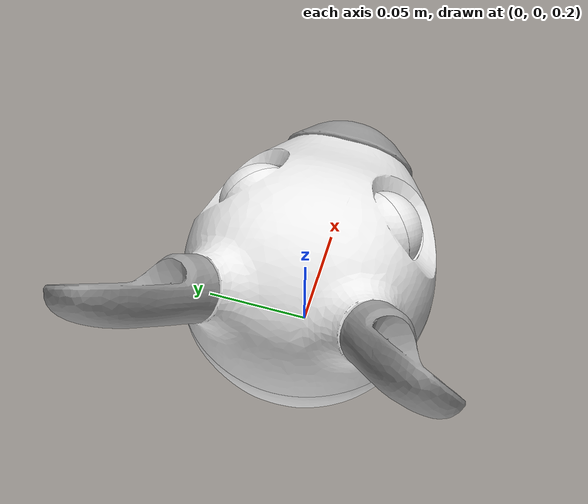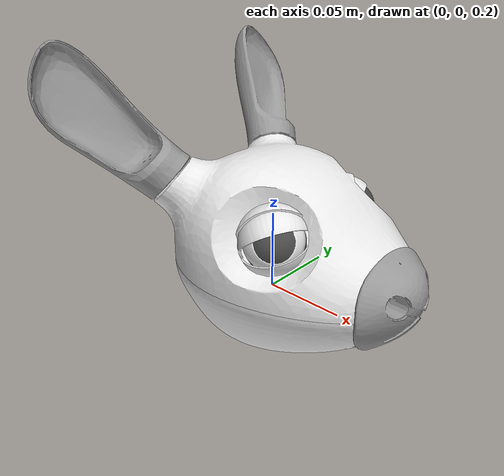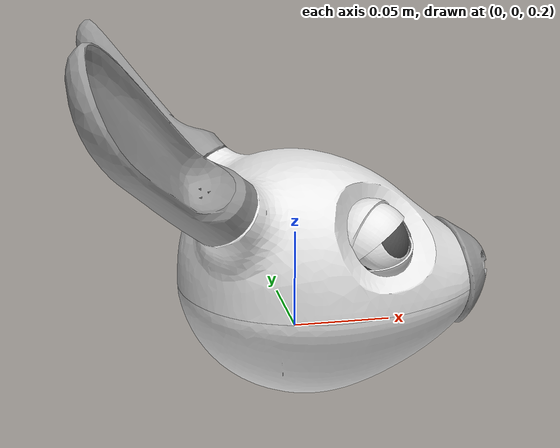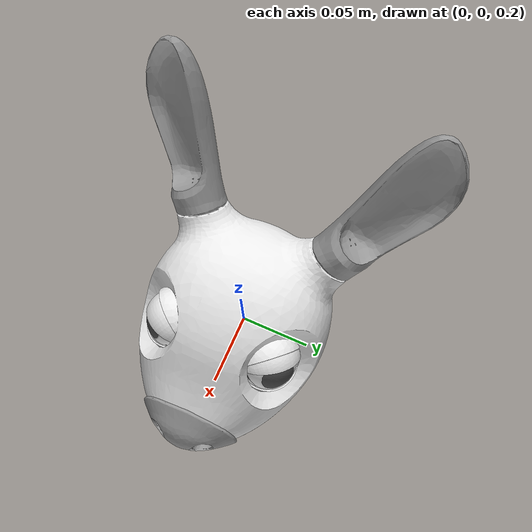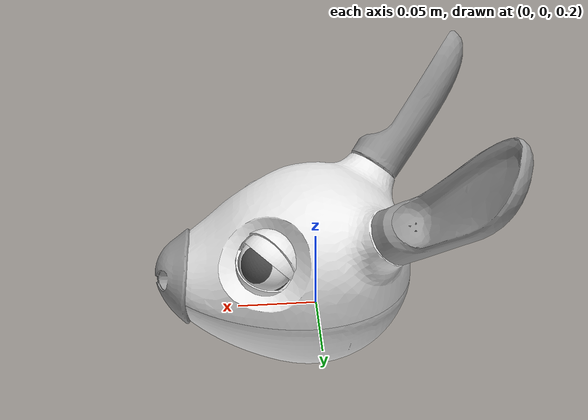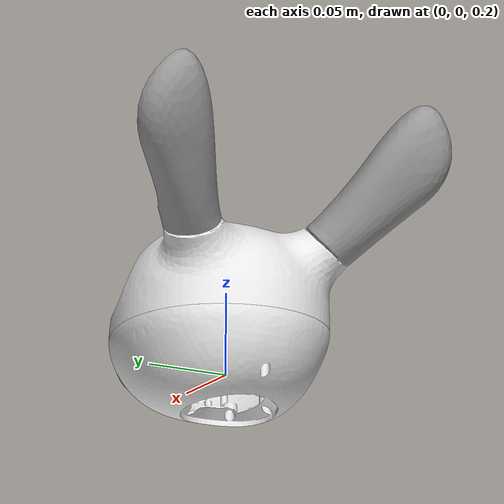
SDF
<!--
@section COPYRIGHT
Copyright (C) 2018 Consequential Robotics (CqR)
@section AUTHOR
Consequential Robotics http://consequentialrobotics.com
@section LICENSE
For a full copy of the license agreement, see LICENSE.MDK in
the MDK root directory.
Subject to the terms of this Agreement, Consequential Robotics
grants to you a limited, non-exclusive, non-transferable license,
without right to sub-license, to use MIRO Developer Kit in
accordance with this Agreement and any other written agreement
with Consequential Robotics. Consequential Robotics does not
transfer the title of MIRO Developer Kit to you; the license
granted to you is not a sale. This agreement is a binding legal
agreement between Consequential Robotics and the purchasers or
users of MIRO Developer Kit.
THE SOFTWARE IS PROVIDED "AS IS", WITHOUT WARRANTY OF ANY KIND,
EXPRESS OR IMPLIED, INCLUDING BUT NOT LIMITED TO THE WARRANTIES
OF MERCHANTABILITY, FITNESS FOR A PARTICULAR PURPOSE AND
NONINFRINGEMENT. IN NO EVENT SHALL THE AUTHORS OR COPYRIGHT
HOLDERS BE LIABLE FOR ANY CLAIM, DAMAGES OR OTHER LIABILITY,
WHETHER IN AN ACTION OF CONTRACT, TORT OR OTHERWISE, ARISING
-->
<?xml version="1.0"?>
<sdf version="1.5">
  <model name="miro_head">
    <link name="head">
      <inertial>
        <pose>-0.002 0 0.221 0 0 0</pose>
        <mass>0.261799</mass>
        <inertia>
          <ixx>0.00043633</ixx>
          <ixy>0.0</ixy>
          <ixz>0.0</ixz>
          <iyy>0.00043633</iyy>
          <iyz>0.0</iyz>
          <izz>0.00043633</izz>
        </inertia>
      </inertial>
      <visual name="visual_head_lower">
        <pose>0 0 0 0 0 0</pose>
        <geometry>
          <mesh>
            <uri>model://miro_model/meshes/head_lower.dae</uri>
          </mesh>
        </geometry>
        <material>
          <script>
            <uri>file://media/materials/scripts/gazebo.material</uri>
            <name>Gazebo/White</name>
          </script>
        </material>
      </visual>
      <collision name="collision_head_lower">
        <pose>0 0 0 0 0 0</pose>
        <geometry>
          <mesh>
            <uri>model://miro_model/meshes/head_lower_collision.dae</uri>
          </mesh>
        </geometry>
        <surface>
          <friction>
            <ode>
              <mu>0.1</mu>
              <mu2>0.1</mu2>
            </ode>
          </friction>
        </surface>
      </collision>
      <visual name="visual_head_upper">
        <pose>0 0 0 0 0 0</pose>
        <geometry>
          <mesh>
            <uri>model://miro_model/meshes/head_upper.dae</uri>
          </mesh>
        </geometry>
        <material>
          <script>
            <uri>file://media/materials/scripts/gazebo.material</uri>
            <name>Gazebo/White</name>
          </script>
        </material>
      </visual>
      <collision name="collision_head_upper">
        <pose>0 0 0 0 0 0</pose>
        <geometry>
          <mesh>
            <uri>model://miro_model/meshes/head_upper_collision.dae</uri>
          </mesh>
        </geometry>
        <surface>
          <friction>
            <ode>
              <mu>0.1</mu>
              <mu2>0.1</mu2>
            </ode>
          </friction>
        </surface>
      </collision>
      <visual name="visual_eyelid_lower_lh">
        <pose>0 0 0 0 0 0</pose>
        <geometry>
          <mesh>
            <uri>model://miro_model/meshes/eyelid_lower_lh.dae</uri>
          </mesh>
        </geometry>
        <material>
          <script>
            <uri>file://media/materials/scripts/gazebo.material</uri>
            <name>Gazebo/White</name>
          </script>
        </material>
      </visual>
      <visual name="visual_eyelid_lower_rh">
        <pose>0 0 0 0 0 0</pose>
        <geometry>
          <mesh>
            <uri>model://miro_model/meshes/eyelid_lower_rh.dae</uri>
          </mesh>
        </geometry>
        <material>
          <script>
            <uri>file://media/materials/scripts/gazebo.material</uri>
            <name>Gazebo/White</name>
          </script>
        </material>
      </visual>
      <visual name="visual_nose">
        <pose>0 0 0 0 0 0</pose>
        <geometry>
          <mesh>
            <uri>model://miro_model/meshes/nose.dae</uri>
          </mesh>
        </geometry>
        <material>
          <script>
            <uri>file://media/materials/scripts/gazebo.material</uri>
            <name>Gazebo/Grey</name>
          </script>
        </material>
      </visual>
      <collision name="collision_nose">
        <pose>0 0 0 0 0 0</pose>
        <geometry>
          <mesh>
            <uri>model://miro_model/meshes/nose_collision.dae</uri>
          </mesh>
        </geometry>
        <surface>
          <friction>
            <ode>
              <mu>0.3</mu>
              <mu2>0.3</mu2>
            </ode>
          </friction>
        </surface>
      </collision>
      <visual name="visual_eyeball_lh">
        <pose>0 0 0 0 0 0</pose>
        <geometry>
          <mesh>
            <uri>model://miro_model/meshes/eyeball_lh.dae</uri>
          </mesh>
        </geometry>
        <material>
          <script>
            <uri>file://media/materials/scripts/gazebo.material</uri>
            <name>Gazebo/White</name>
          </script>
        </material>
      </visual>
      <visual name="visual_eyeball_rh">
        <pose>0 0 0 0 0 0</pose>
        <geometry>
          <mesh>
            <uri>model://miro_model/meshes/eyeball_rh.dae</uri>
          </mesh>
        </geometry>
        <material>
          <script>
            <uri>file://media/materials/scripts/gazebo.material</uri>
            <name>Gazebo/White</name>
          </script>
        </material>
      </visual>
      <visual name="visual_iris_lh">
        <pose>0 0 0 0 0 0</pose>
        <geometry>
          <mesh>
            <uri>model://miro_model/meshes/iris_lh.dae</uri>
          </mesh>
        </geometry>
        <material>
          <script>
            <uri>file://media/materials/scripts/gazebo.material</uri>
            <name>Gazebo/DarkGrey</name>
          </script>
        </material>
      </visual>
      <visual name="visual_iris_rh">
        <pose>0 0 0 0 0 0</pose>
        <geometry>
          <mesh>
            <uri>model://miro_model/meshes/iris_rh.dae</uri>
          </mesh>
        </geometry>
        <material>
          <script>
            <uri>file://media/materials/scripts/gazebo.material</uri>
            <name>Gazebo/DarkGrey</name>
          </script>
        </material>
      </visual>
      <!-- eye_l -->
      <sensor name="eye_l" type="camera">
        <pose>0.0385 0.0434 0.2595 -0.27 -0.7854 0.3665</pose>
        <camera>
          <horizontal_fov>1.82</horizontal_fov>
          <image>
            <width>640</width>
            <height>480</height>
          </image>
          <clip>
            <near>0.001</near>
            <far>100</far>
          </clip>
          <distortion>
            <k1>-0.75</k1>
            <k2>0.25</k2>
            <k3>0.0</k3>
            <p1>0.0</p1>
            <p2>0.0</p2>
            <center>0.5 0.5</center>
          </distortion>
        </camera>
        <always_on>1</always_on>
        <update_rate>5</update_rate>
        <visualize>false</visualize>
      </sensor>
      <!-- eye_r -->
      <sensor name="eye_r" type="camera">
        <pose>0.0385 -0.0434 0.2595 0.27 -0.7854 -0.3665</pose>
        <camera>
          <horizontal_fov>1.82</horizontal_fov>
          <image>
            <width>640</width>
            <height>480</height>
          </image>
          <clip>
            <near>0.001</near>
            <far>100</far>
          </clip>
          <distortion>
            <k1>-0.75</k1>
            <k2>0.25</k2>
            <k3>0.0</k3>
            <p1>0.0</p1>
            <p2>0.0</p2>
            <center>0.5 0.5</center>
          </distortion>
        </camera>
        <always_on>1</always_on>
        <update_rate>5</update_rate>
        <visualize>false</visualize>
      </sensor>
      <!-- gopro -->
      <sensor name="gopro" type="camera">
        <pose>0 0 1.0 0 1.22 0</pose>
        <camera>
          <horizontal_fov>1.0472</horizontal_fov>
          <image>
            <width>640</width>
            <height>480</height>
          </image>
          <clip>
            <near>0.01</near>
            <far>2</far>
          </clip>
        </camera>
        <always_on>1</always_on>
        <update_rate>5</update_rate>
        <visualize>false</visualize>
      </sensor>
      <!-- imu -->
      <sensor name="acc_head" type="imu">
        <pose>0 0 0 0 0 0</pose>
        <always_on>1</always_on>
        <update_rate>50</update_rate>
        <visualize>false</visualize>
      </sensor>
      <!-- sonar -->
      <sensor name="sonar" type="sonar">
        <pose>0.1 0 0.235 0 -1.5708 0</pose>
        <always_on>1</always_on>
        <update_rate>50</update_rate>
        <visualize>false</visualize>
        <sonar>
          <min>0.0</min>
          <max>1.0</max>
          <radius>0.05</radius>
        </sonar>
      </sensor>
    </link>
    <link name="eyelid_lh">
      <inertial>
        <pose>0.029 0.032 0.252 0 0 0</pose>
        <mass>0.016755</mass>
        <inertia>
          <ixx>0.00000447</ixx>
          <ixy>0.0</ixy>
          <ixz>0.0</ixz>
          <iyy>0.00000447</iyy>
          <iyz>0.0</iyz>
          <izz>0.00000447</izz>
        </inertia>
      </inertial>
      <visual name="visual_eyelid_lh">
        <pose>0 0 0 0 0 0</pose>
        <geometry>
          <mesh>
            <uri>model://miro_model/meshes/eyelid_lh.dae</uri>
          </mesh>
        </geometry>
        <material>
          <script>
            <uri>file://media/materials/scripts/gazebo.material</uri>
            <name>Gazebo/White</name>
          </script>
        </material>
      </visual>
    </link>
    <link name="eyelid_rh">
      <inertial>
        <pose>0.029 -0.032 0.252 0 0 0</pose>
        <mass>0.016755</mass>
        <inertia>
          <ixx>0.00000447</ixx>
          <ixy>0.0</ixy>
          <ixz>0.0</ixz>
          <iyy>0.00000447</iyy>
          <iyz>0.0</iyz>
          <izz>0.00000447</izz>
        </inertia>
      </inertial>
      <visual name="visual_eyelid_rh">
        <pose>0 0 0 0 0 0</pose>
        <geometry>
          <mesh>
            <uri>model://miro_model/meshes/eyelid_rh.dae</uri>
          </mesh>
        </geometry>
        <material>
          <script>
            <uri>file://media/materials/scripts/gazebo.material</uri>
            <name>Gazebo/White</name>
          </script>
        </material>
      </visual>
    </link>
    <!-- joint axes are from "eyelid axes.txt" in FreeCAD source folder -->
    <joint type="revolute" name="head_eyelid_lh">
      <pose>0.029 0.032 0.252 0 0 0</pose>
      <parent>head</parent>
      <child>eyelid_lh</child>
      <axis>
        <xyz>-0.675 0.675 -0.2978</xyz>
        <limit>
          <lower>-1.57</lower>
          <upper>1.57</upper>
        </limit>
        <dynamics>
          <friction>0.1</friction>
          <damping>0.1</damping>
          <spring_reference>-0.5</spring_reference>
          <spring_stiffness>0.02</spring_stiffness>
        </dynamics>
      </axis>
      <physics>
        <ode>
          <cfm_damping>true</cfm_damping>
          <implicit_spring_damper>true</implicit_spring_damper>
        </ode>
      </physics>
    </joint>
    <joint type="revolute" name="head_eyelid_rh">
      <pose>0.029 -0.032 0.252 0 0 0</pose>
      <parent>head</parent>
      <child>eyelid_rh</child>
      <axis>
        <xyz>0.675 0.675 0.2978</xyz>
        <limit>
          <lower>-1.57</lower>
          <upper>1.57</upper>
        </limit>
        <dynamics>
          <friction>0.1</friction>
          <damping>0.1</damping>
          <spring_reference>-0.5</spring_reference>
          <spring_stiffness>0.02</spring_stiffness>
        </dynamics>
      </axis>
      <physics>
        <ode>
          <cfm_damping>true</cfm_damping>
          <implicit_spring_damper>true</implicit_spring_damper>
        </ode>
      </physics>
    </joint>
    <link name="ear_lh">
      <inertial>
        <pose>-0.0437 0.0474 0.2773 0 0 0</pose>
        <mass>0.056549</mass>
        <inertia>
          <ixx>0.00003393</ixx>
          <ixy>0.0</ixy>
          <ixz>0.0</ixz>
          <iyy>0.00003393</iyy>
          <iyz>0.0</iyz>
          <izz>0.00003393</izz>
        </inertia>
      </inertial>
      <visual name="visual_ear_lh">
        <pose>0 0 0 0 0 0</pose>
        <geometry>
          <mesh>
            <uri>model://miro_model/meshes/ear_lh.dae</uri>
          </mesh>
        </geometry>
        <material>
          <script>
            <uri>file://media/materials/scripts/gazebo.material</uri>
            <name>Gazebo/Grey</name>
          </script>
        </material>
      </visual>
      <collision name="collision_ear_lh">
        <pose>0 0 0 0 0 0</pose>
        <geometry>
          <mesh>
            <uri>model://miro_model/meshes/ear_lh_collision.dae</uri>
          </mesh>
        </geometry>
        <surface>
          <friction>
            <ode>
              <mu>0.3</mu>
              <mu2>0.3</mu2>
            </ode>
          </friction>
        </surface>
      </collision>
    </link>
    <link name="ear_rh">
      <inertial>
        <pose>-0.0437 -0.0474 0.2773 0 0 0</pose>
        <mass>0.056549</mass>
        <inertia>
          <ixx>0.00003393</ixx>
          <ixy>0.0</ixy>
          <ixz>0.0</ixz>
          <iyy>0.00003393</iyy>
          <iyz>0.0</iyz>
          <izz>0.00003393</izz>
        </inertia>
      </inertial>
      <visual name="visual_ear_rh">
        <pose>0 0 0 0 0 0</pose>
        <geometry>
          <mesh>
            <uri>model://miro_model/meshes/ear_rh.dae</uri>
          </mesh>
        </geometry>
        <material>
          <script>
            <uri>file://media/materials/scripts/gazebo.material</uri>
            <name>Gazebo/Grey</name>
          </script>
        </material>
      </visual>
      <collision name="collision_ear_rh">
        <pose>0 0 0 0 0 0</pose>
        <geometry>
          <mesh>
            <uri>model://miro_model/meshes/ear_rh_collision.dae</uri>
          </mesh>
        </geometry>
        <surface>
          <friction>
            <ode>
              <mu>0.3</mu>
              <mu2>0.3</mu2>
            </ode>
          </friction>
        </surface>
      </collision>
    </link>
    <joint type="revolute" name="head_ear_lh">
      <pose>-0.0437 0.0474 0.2773 0 0 0</pose>
      <parent>head</parent>
      <child>ear_lh</child>
      <axis>
        <xyz>-0.5730 0.4344 0.6949</xyz>
        <limit>
          <lower>-1.57</lower>
          <upper>1.57</upper>
        </limit>
        <dynamics>
          <friction>0.01</friction>
          <damping>0.001</damping>
        </dynamics>
      </axis>
    </joint>
    <joint type="revolute" name="head_ear_rh">
      <pose>-0.0437 -0.0474 0.2773 0 0 0</pose>
      <parent>head</parent>
      <child>ear_rh</child>
      <axis>
        <xyz>-0.5730 -0.4344 0.6949</xyz>
        <limit>
          <lower>-1.57</lower>
          <upper>1.57</upper>
        </limit>
        <dynamics>
          <friction>0.01</friction>
          <damping>0.001</damping>
        </dynamics>
      </axis>
    </joint>
  </model>
</sdf>
